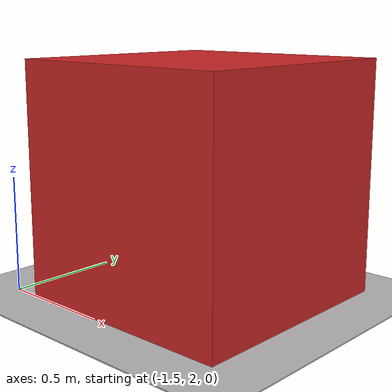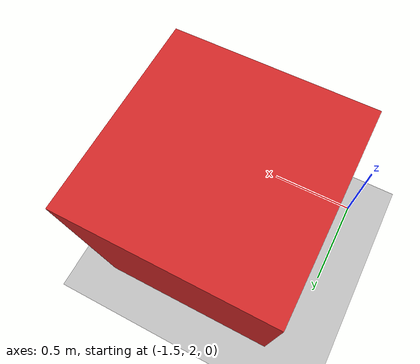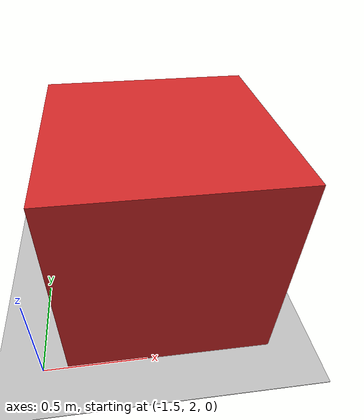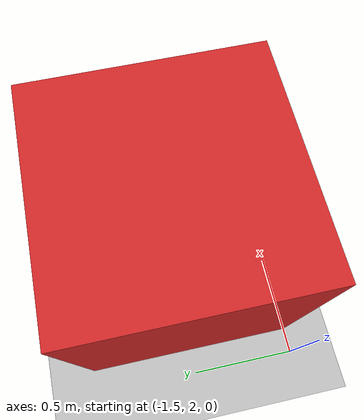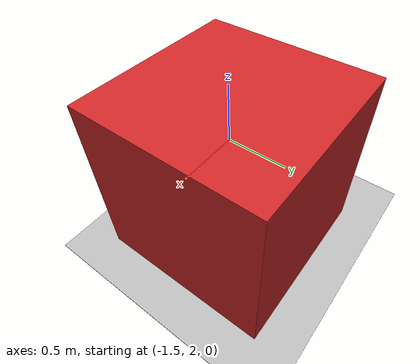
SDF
<?xml version="1.0"?>
<sdf version="1.4">
  <world name="default">

    <!-- A global light source -->
   <scene>
      <sky>
        <clouds>
          <speed>12</speed>
        </clouds>
      </sky>
   </scene>

    <include>
      <uri>model://sun</uri>
    </include>

    <include>
      <uri>model://ground_plane</uri>
    </include>

          <include>
      <pose>0 0 0 0 0 0</pose>
      <uri>model://roffa</uri>
    </include>

          <model name='unit_box'>
        <static>1</static>
      <pose frame=''>-0.88171 2.49992 0.5 0 -0 0</pose>
      <link name='link'>
        <collision name='collision'>
          <geometry>
            <box>
              <size>1 1 1</size>
            </box>
          </geometry>
        </collision>
        <visual name='visual'>
          <geometry>
            <box>
              <size>1 1 1</size>
            </box>
          </geometry>
          <material>
            <script>
              <uri>file://media/materials/scripts/gazebo.material</uri>
              <name>Gazebo/Red</name>
            </script>
          </material>
        </visual>
      </link>
    </model>

  </world>
</sdf>

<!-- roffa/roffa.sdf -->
<sdf version='1.5'>
  <model name='roffa'>
    <static>true</static>
    <link name="link">
      <collision name="collision">
        <geometry>
          <box>
            <size>100 200 .005</size>
          </box>
        </geometry>
          <surface>
            <friction>
              <ode>
                <mu>100</mu>
                <mu2>50</mu2>
              </ode>
            </friction>
          </surface>
      </collision>
      <visual name="visual">
        <cast_shadows>false</cast_shadows>
        <geometry>
          <box>
            <size>100 200 .005</size>
          </box>
        </geometry>
        <material>
          <script>
            <name>roffa</name>
            <uri>model://roffa/materials/scripts</uri>
            <uri>model://roffa/materials/textures</uri>
          </script>
        </material>
      </visual>
    </link>
  </model>
</sdf>
